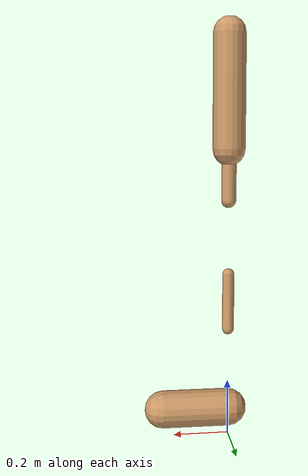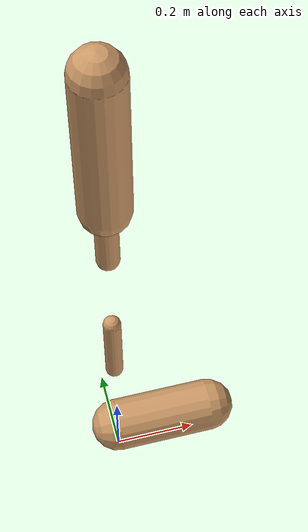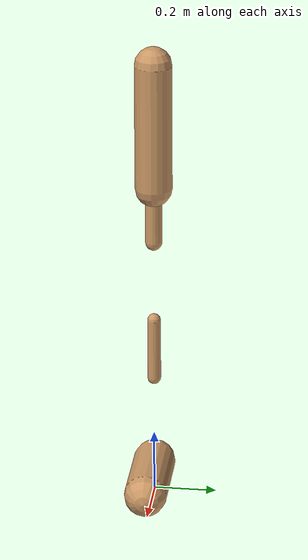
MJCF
<mujoco model="walker2d">
  <compiler angle="degree" coordinate="global" inertiafromgeom="true" />
  <default>
    <joint armature="0.01" damping=".1" limited="true" />
    <geom conaffinity="0" condim="3" contype="1" density="1000" friction="0.8 .1 .1" rgba="0.8 0.6 .4 1" />
  </default>
  <option integrator="RK4" timestep="0.002" />
  <worldbody>

    <body name="torso" pos="0 0 -0.5674992030086502">
      <joint armature="0" axis="1 0 0" damping="0" limited="false" name="ignorex" pos="0 0 0" stiffness="0" type="slide" />
      <joint armature="0" axis="0 0 1" damping="0" limited="false" name="ignorez" pos="0 0 0" ref="1.25" stiffness="0" type="slide" />
      <joint armature="0" axis="0 1 0" damping="0" limited="false" name="ignorey" pos="0 0 0" stiffness="0" type="hinge" />
      <geom fromto="0 0 1.45 0 0 1.05" name="torso_geom" size="0.058548155782546185" type="capsule" />
      <body name="thigh">
        <joint axis="0 -1 0" name="thigh_joint" pos="0 0 1.05" range="-150 0" type="hinge" />
        <geom fromto="0.0 0.0 1.05 0.0 0.0 0.8688154119514659" name="thigh_geom" size="0.026674976527178852" type="capsule" />
        <body name="leg" pos="0.0 0.0 0.26881541195146597">
          <joint axis="0 -1 0" name="leg_joint" pos="0 0 0.6" range="-150 0" type="hinge" />
          <geom fromto="0.0 0.0 0.6 0.0 0.0 0.3986837910571843" name="leg_geom" size="0.02133998122174308" type="capsule" />
          <body name="foot" pos="0.0 0.0 0.29868379105718434">
            <joint axis="0 -1 0" name="foot_joint" pos="0 0 0.1" range="-45 45" type="hinge" />
            <geom fromto="-0.0 0.0 0.1 0.23976267854404432 0.0 0.1" name="foot_geom" size="0.06741445011933933" type="capsule" />
          </body>
        </body>
      </body>

      <body name="thigh_left">
        <joint axis="0 -1 0" name="thigh_left_joint" pos="0 0 1.05" range="-150 0" type="hinge" />
        <geom fromto="0.0 0.0 1.05 0.0 0.0 0.8688154119514659" name="thigh_left_geom" rgba=".7 .3 .6 1" size="0.026674976527178852" type="capsule" />
        <body name="leg_left" pos="0.0 0.0 0.26881541195146597">
          <joint axis="0 -1 0" name="leg_left_joint" pos="0 0 0.6" range="-150 0" type="hinge" />
          <geom fromto="0.0 0.0 0.6 0.0 0.0 0.3986837910571843" name="leg_left_geom" rgba=".7 .3 .6 1" size="0.02133998122174308" type="capsule" />
          <body name="foot_left" pos="0.0 0.0 0.29868379105718434">
            <joint axis="0 -1 0" name="foot_left_joint" pos="0 0 0.1" range="-45 45" type="hinge" />
            <geom fromto="-0.0 0.0 0.1 0.23976267854404432 0.0 0.1" name="foot_left_geom" rgba=".7 .3 .6 1" size="0.06741445011933933" type="capsule" />
          </body>
        </body>
      </body>
    </body>
  </worldbody>
  <actuator>

    <motor ctrllimited="true" ctrlrange="-1.0 1.0" gear="100" joint="thigh_joint" />
    <motor ctrllimited="true" ctrlrange="-1.0 1.0" gear="100" joint="leg_joint" />
    <motor ctrllimited="true" ctrlrange="-1.0 1.0" gear="100" joint="foot_joint" />
    <motor ctrllimited="true" ctrlrange="-1.0 1.0" gear="100" joint="thigh_left_joint" />
    <motor ctrllimited="true" ctrlrange="-1.0 1.0" gear="100" joint="leg_left_joint" />
    <motor ctrllimited="true" ctrlrange="-1.0 1.0" gear="100" joint="foot_left_joint" />

  </actuator>
</mujoco>
